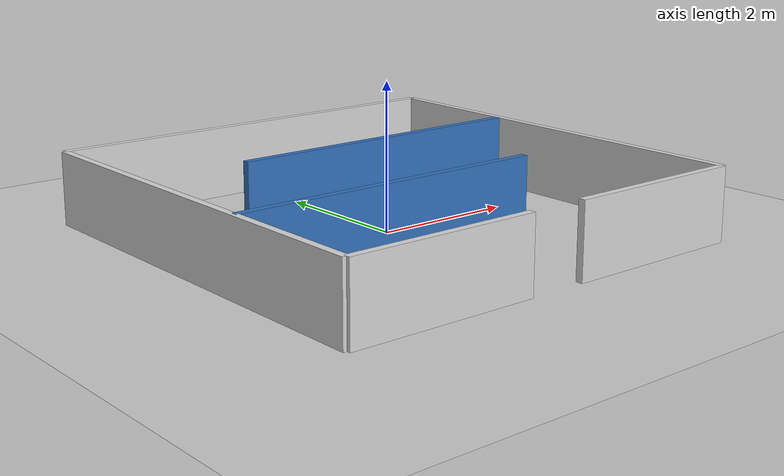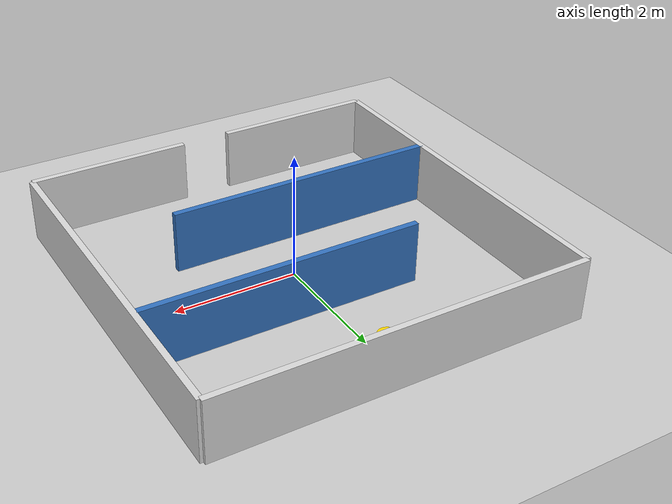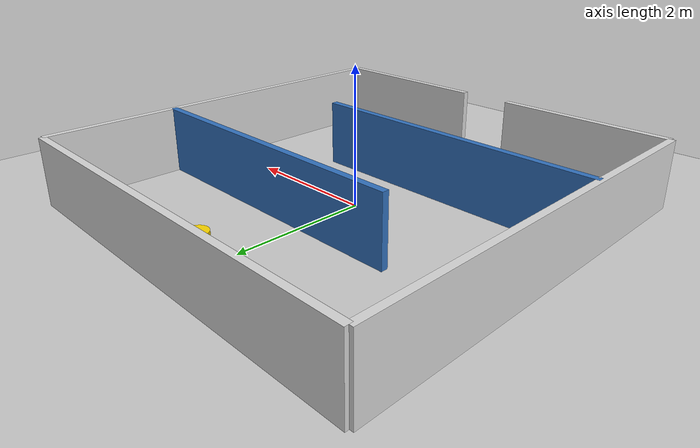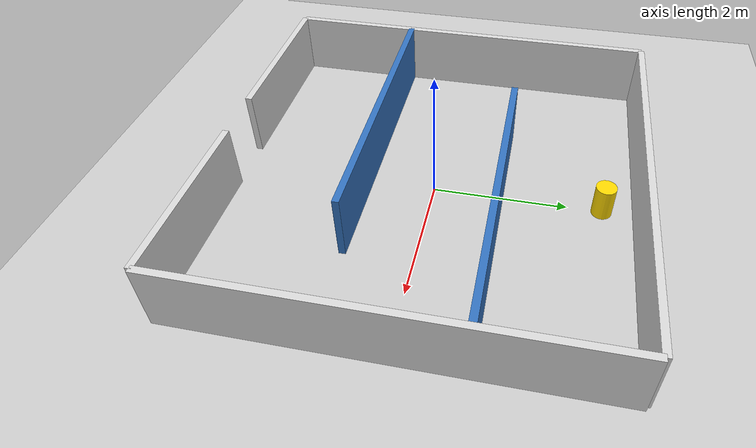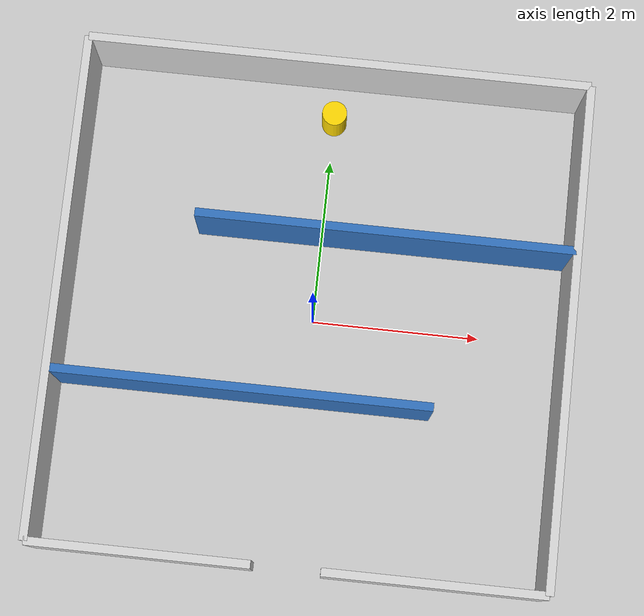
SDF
<?xml version="1.0" ?>
<sdf version="1.9">
  <world name="maze">
    <plugin filename="gz-sim-physics-system"        name="gz::sim::systems::Physics" />
    <plugin filename="gz-sim-user-commands-system"  name="gz::sim::systems::UserCommands" />
    <plugin filename="gz-sim-scene-broadcaster-system" name="gz::sim::systems::SceneBroadcaster" />
    <plugin filename="gz-sim-sensors-system"        name="gz::sim::systems::Sensors">
      <render_engine>ogre2</render_engine>
    </plugin>

    <physics name="100hz" type="ignored">
      <max_step_size>0.01</max_step_size>
      <real_time_update_rate>100</real_time_update_rate>
      <real_time_factor>1.0</real_time_factor>
    </physics>

    <gravity>0 0 -9.8</gravity>

    <!-- Top-down view camera, centred on the 6 m maze -->
    <gui fullscreen="0">
      <camera name="user_camera">
        <pose>0 0 12 0 -1.2 -1.57</pose>
        <view_controller>orbit</view_controller>
        <projection_type>perspective</projection_type>
      </camera>
    </gui>

    <scene>
      <ambient>0.6 0.6 0.6 1.0</ambient>
      <background>0.85 0.85 0.85 1.0</background>
      <shadows>true</shadows>
    </scene>

    <light name="sun" type="directional">
      <cast_shadows>true</cast_shadows>
      <pose>0 0 10 0 0 0</pose>
      <diffuse>0.8 0.8 0.8 1</diffuse>
      <specular>0.2 0.2 0.2 1</specular>
      <attenuation>
        <range>1000</range>
        <constant>0.9</constant>
        <linear>0.01</linear>
        <quadratic>0.001</quadratic>
      </attenuation>
      <direction>-0.5 0.1 -0.9</direction>
    </light>

    <model name="ground_plane">
      <static>true</static>
      <link name="link">
        <collision name="collision">
          <geometry>
            <plane><normal>0 0 1</normal><size>100 100</size></plane>
          </geometry>
        </collision>
        <visual name="visual">
          <geometry>
            <plane><normal>0 0 1</normal><size>100 100</size></plane>
          </geometry>
          <material>
            <ambient>0.8 0.8 0.8 1</ambient>
            <diffuse>0.8 0.8 0.8 1</diffuse>
            <specular>0.1 0.1 0.1 1</specular>
          </material>
        </visual>
      </link>
    </model>

    <!-- ═══════════════════════════════════════════
         Outer boundary  (grey, 0.1 m thick, 1.0 m tall)
         ═══════════════════════════════════════════ -->

    <!-- North wall: solid (no exit — goal is a marker inside) -->
    <model name="outer_north">
      <static>true</static>
      <pose>0 3.0 0.5 0 0 0</pose>
      <link name="link">
        <collision name="collision">
          <geometry><box><size>6.0 0.1 1.0</size></box></geometry>
        </collision>
        <visual name="visual">
          <geometry><box><size>6.0 0.1 1.0</size></box></geometry>
          <material>
            <ambient>0.85 0.85 0.85 1</ambient>
            <diffuse>0.85 0.85 0.85 1</diffuse>
          </material>
        </visual>
      </link>
    </model>

    <!-- West wall: full 6 m (rotated 90° so box X-axis aligns with world Y-axis) -->
    <model name="outer_west">
      <static>true</static>
      <pose>-3.0 0 0.5 0 0 1.5708</pose>
      <link name="link">
        <collision name="collision">
          <geometry><box><size>6.0 0.1 1.0</size></box></geometry>
        </collision>
        <visual name="visual">
          <geometry><box><size>6.0 0.1 1.0</size></box></geometry>
          <material>
            <ambient>0.85 0.85 0.85 1</ambient>
            <diffuse>0.85 0.85 0.85 1</diffuse>
          </material>
        </visual>
      </link>
    </model>

    <!-- East wall: full 6 m -->
    <model name="outer_east">
      <static>true</static>
      <pose>3.0 0 0.5 0 0 1.5708</pose>
      <link name="link">
        <collision name="collision">
          <geometry><box><size>6.0 0.1 1.0</size></box></geometry>
        </collision>
        <visual name="visual">
          <geometry><box><size>6.0 0.1 1.0</size></box></geometry>
          <material>
            <ambient>0.85 0.85 0.85 1</ambient>
            <diffuse>0.85 0.85 0.85 1</diffuse>
          </material>
        </visual>
      </link>
    </model>

    <!--
      South wall: 0.8 m centre gap (entry).
        Left piece:  x = -3.0 to -0.4  → length 2.6 m, centre at x = -1.7
        Right piece: x =  0.4 to  3.0  → length 2.6 m, centre at x =  1.7
    -->
    <model name="outer_south_left">
      <static>true</static>
      <pose>-1.7 -3.0 0.5 0 0 0</pose>
      <link name="link">
        <collision name="collision">
          <geometry><box><size>2.6 0.1 1.0</size></box></geometry>
        </collision>
        <visual name="visual">
          <geometry><box><size>2.6 0.1 1.0</size></box></geometry>
          <material>
            <ambient>0.85 0.85 0.85 1</ambient>
            <diffuse>0.85 0.85 0.85 1</diffuse>
          </material>
        </visual>
      </link>
    </model>

    <model name="outer_south_right">
      <static>true</static>
      <pose>1.7 -3.0 0.5 0 0 0</pose>
      <link name="link">
        <collision name="collision">
          <geometry><box><size>2.6 0.1 1.0</size></box></geometry>
        </collision>
        <visual name="visual">
          <geometry><box><size>2.6 0.1 1.0</size></box></geometry>
          <material>
            <ambient>0.85 0.85 0.85 1</ambient>
            <diffuse>0.85 0.85 0.85 1</diffuse>
          </material>
        </visual>
      </link>
    </model>

    <model name="maze_h1">
      <static>true</static>
      <pose>-0.75 -1.0 0.5 0 0 0</pose>
      <link name="link">
        <collision name="collision">
          <geometry><box><size>4.5 0.1 1.0</size></box></geometry>
        </collision>
        <visual name="visual">
          <geometry><box><size>4.5 0.1 1.0</size></box></geometry>
          <material>
            <ambient>0.2 0.45 0.75 1</ambient>
            <diffuse>0.2 0.45 0.75 1</diffuse>
          </material>
        </visual>
      </link>
    </model>

    <model name="maze_h2">
      <static>true</static>
      <pose>0.75 1.0 0.5 0 0 0</pose>
      <link name="link">
        <collision name="collision">
          <geometry><box><size>4.5 0.1 1.0</size></box></geometry>
        </collision>
        <visual name="visual">
          <geometry><box><size>4.5 0.1 1.0</size></box></geometry>
          <material>
            <ambient>0.2 0.45 0.75 1</ambient>
            <diffuse>0.2 0.45 0.75 1</diffuse>
          </material>
        </visual>
      </link>
    </model>

    <model name="goal_marker">
      <static>true</static>
      <pose>0 2.5 0.25 0 0 0</pose>
      <link name="link">
        <collision name="collision">
          <geometry>
            <cylinder><radius>0.15</radius><length>0.5</length></cylinder>
          </geometry>
        </collision>
        <visual name="visual">
          <geometry>
            <cylinder><radius>0.15</radius><length>0.5</length></cylinder>
          </geometry>
          <material>
            <ambient>1.0 0.85 0.0 1</ambient>
            <diffuse>1.0 0.85 0.0 1</diffuse>
            <specular>0.5 0.5 0.5 1</specular>
            <emissive>0.3 0.25 0.0 1</emissive>
          </material>
        </visual>
      </link>
    </model>

  </world>
</sdf>
